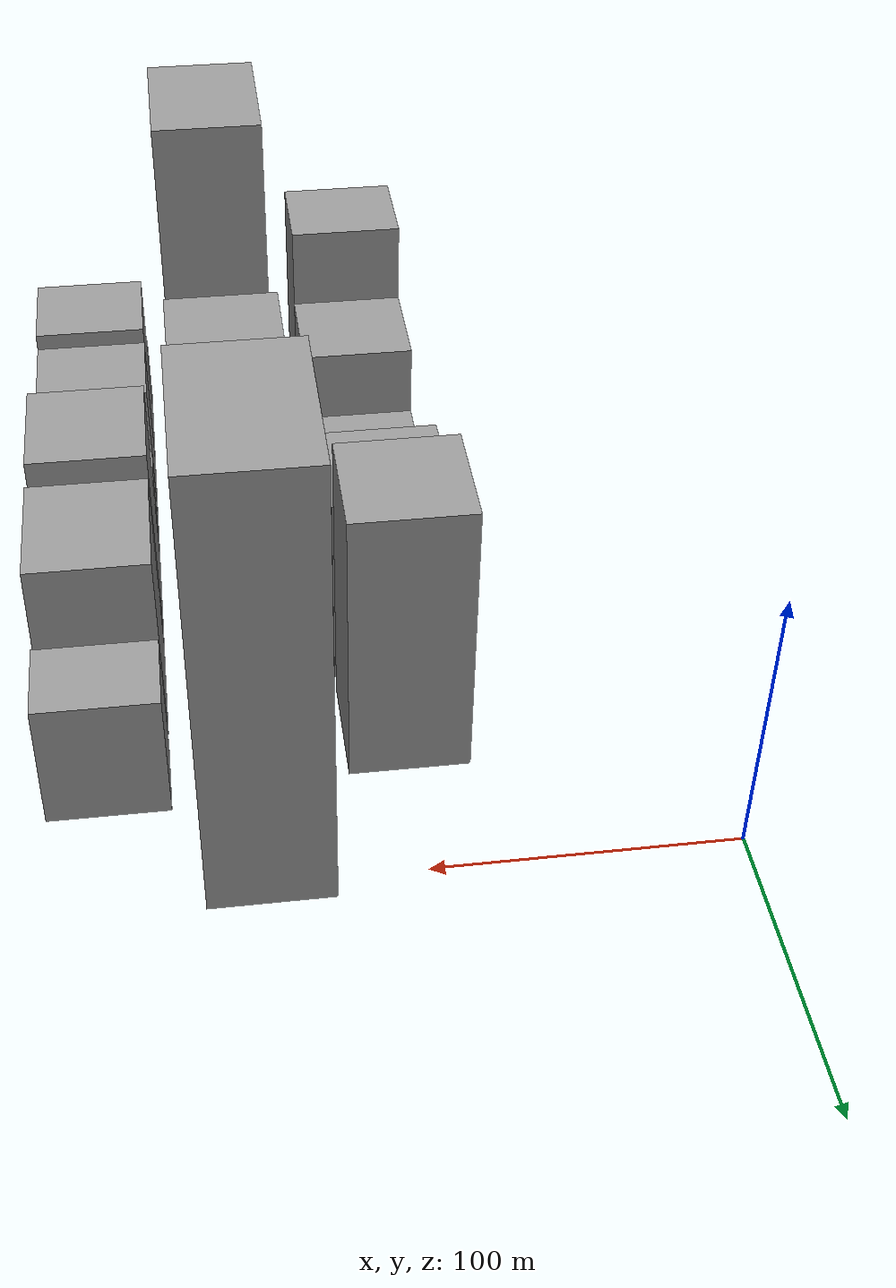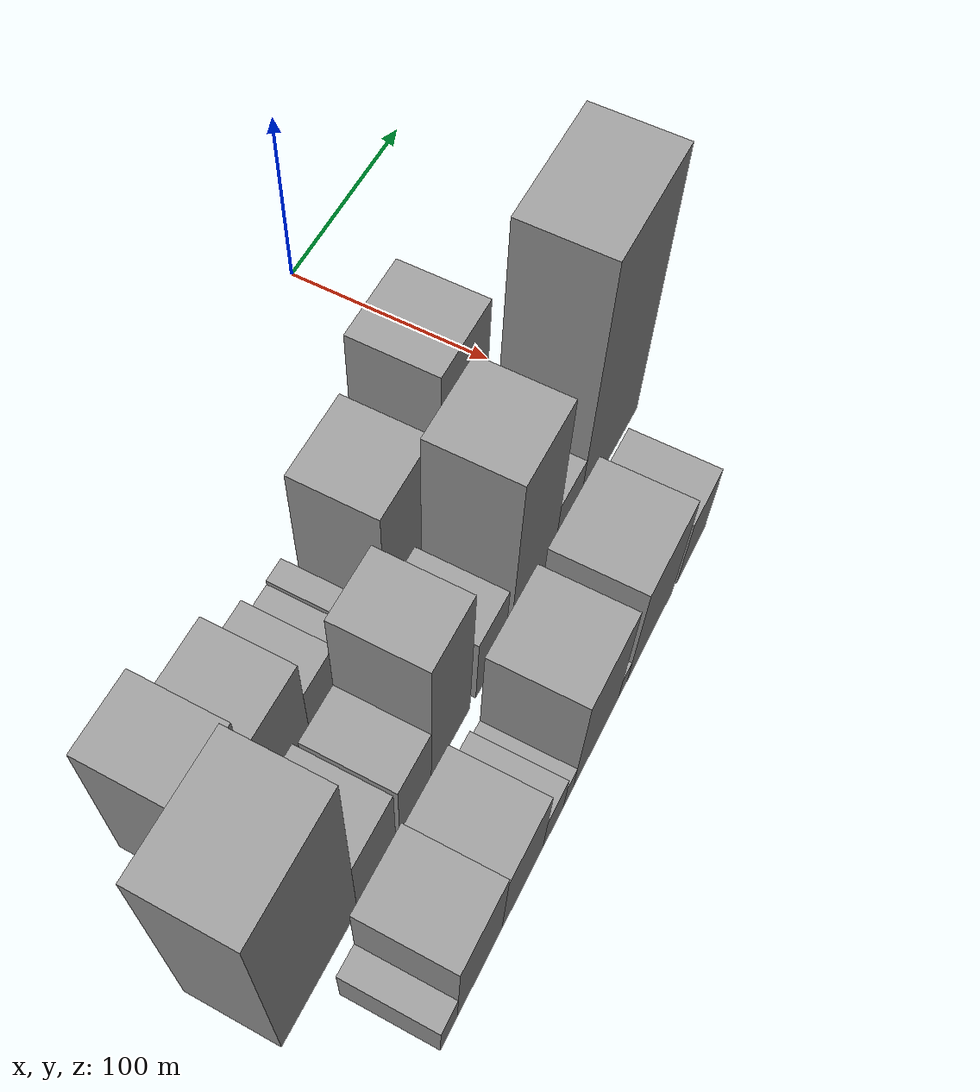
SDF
<sdf version="1.6">
 <world name="default">
  <model name="building_11">
   <static>1</static>
   <pose>100.0000 -242.7099 0 0.000000 0.000000 0.000000</pose>
   <link name="link">
    <pose>0 0 48.00 0 0 0</pose>
    <collision name="collision"><geometry><box><size>40.0000 33.5194 96.0000</size></box></geometry></collision>
    <visual name="visual">
     <cast_shadows>0</cast_shadows>
     <geometry><box><size>40.0000 33.5194 96.0000</size></box></geometry>
     <material>
      <script>
       <uri>model://grey_wall/materials/scripts</uri>
       <uri>model://grey_wall/materials/textures</uri>
       <name>vrc/grey_wall</name>
      </script>
     </material>
    </visual>
   </link>
  </model>
  <model name="building_12">
   <static>1</static>
   <pose>100.0000 -207.3057 0 0.000000 0.000000 0.000000</pose>
   <link name="link">
    <pose>0 0 33.00 0 0 0</pose>
    <collision name="collision"><geometry><box><size>40.0000 37.2890 66.0000</size></box></geometry></collision>
    <visual name="visual">
     <cast_shadows>0</cast_shadows>
     <geometry><box><size>40.0000 37.2890 66.0000</size></box></geometry>
     <material>
      <script>
       <uri>model://grey_wall/materials/scripts</uri>
       <uri>model://grey_wall/materials/textures</uri>
       <name>vrc/grey_wall</name>
      </script>
     </material>
    </visual>
   </link>
  </model>
  <model name="building_13">
   <static>1</static>
   <pose>100.0000 -177.5530 0 0.000000 0.000000 0.000000</pose>
   <link name="link">
    <pose>0 0 19.50 0 0 0</pose>
    <collision name="collision"><geometry><box><size>40.0000 22.2164 39.0000</size></box></geometry></collision>
    <visual name="visual">
     <cast_shadows>0</cast_shadows>
     <geometry><box><size>40.0000 22.2164 39.0000</size></box></geometry>
     <material>
      <script>
       <uri>model://grey_wall/materials/scripts</uri>
       <uri>model://grey_wall/materials/textures</uri>
       <name>vrc/grey_wall</name>
      </script>
     </material>
    </visual>
   </link>
  </model>
  <model name="building_14">
   <static>1</static>
   <pose>100.0000 -155.9474 0 0.000000 0.000000 0.000000</pose>
   <link name="link">
    <pose>0 0 12.00 0 0 0</pose>
    <collision name="collision"><geometry><box><size>40.0000 10.9948 24.0000</size></box></geometry></collision>
    <visual name="visual">
     <cast_shadows>0</cast_shadows>
     <geometry><box><size>40.0000 10.9948 24.0000</size></box></geometry>
     <material>
      <script>
       <uri>model://grey_wall/materials/scripts</uri>
       <uri>model://grey_wall/materials/textures</uri>
       <name>vrc/grey_wall</name>
      </script>
     </material>
    </visual>
   </link>
  </model>
  <model name="building_15">
   <static>1</static>
   <pose>100.0000 -144.8845 0 0.000000 0.000000 0.000000</pose>
   <link name="link">
    <pose>0 0 13.50 0 0 0</pose>
    <collision name="collision"><geometry><box><size>40.0000 11.1311 27.0000</size></box></geometry></collision>
    <visual name="visual">
     <cast_shadows>0</cast_shadows>
     <geometry><box><size>40.0000 11.1311 27.0000</size></box></geometry>
     <material>
      <script>
       <uri>model://grey_wall/materials/scripts</uri>
       <uri>model://grey_wall/materials/textures</uri>
       <name>vrc/grey_wall</name>
      </script>
     </material>
    </visual>
   </link>
  </model>
  <model name="building_16">
   <static>1</static>
   <pose>100.0000 -108.9709 0 0.000000 0.000000 0.000000</pose>
   <link name="link">
    <pose>0 0 37.50 0 0 0</pose>
    <collision name="collision"><geometry><box><size>40.0000 40.6960 75.0000</size></box></geometry></collision>
    <visual name="visual">
     <cast_shadows>0</cast_shadows>
     <geometry><box><size>40.0000 40.6960 75.0000</size></box></geometry>
     <material>
      <script>
       <uri>model://grey_wall/materials/scripts</uri>
       <uri>model://grey_wall/materials/textures</uri>
       <name>vrc/grey_wall</name>
      </script>
     </material>
    </visual>
   </link>
  </model>
  <model name="building_17">
   <static>1</static>
   <pose>100.0000 -62.7617 0 0.000000 0.000000 0.000000</pose>
   <link name="link">
    <pose>0 0 52.50 0 0 0</pose>
    <collision name="collision"><geometry><box><size>40.0000 39.7224 105.0000</size></box></geometry></collision>
    <visual name="visual">
     <cast_shadows>0</cast_shadows>
     <geometry><box><size>40.0000 39.7224 105.0000</size></box></geometry>
     <material>
      <script>
       <uri>model://grey_wall/materials/scripts</uri>
       <uri>model://grey_wall/materials/textures</uri>
       <name>vrc/grey_wall</name>
      </script>
     </material>
    </visual>
   </link>
  </model>
  <model name="building_40">
   <static>1</static>
   <pose>149.0000 -265.3873 0 0.000000 0.000000 0.000000</pose>
   <link name="link">
    <pose>0 0 67.50 0 0 0</pose>
    <collision name="collision"><geometry><box><size>40.0000 53.4052 135.0000</size></box></geometry></collision>
    <visual name="visual">
     <cast_shadows>0</cast_shadows>
     <geometry><box><size>40.0000 53.4052 135.0000</size></box></geometry>
     <material>
      <script>
       <uri>model://grey_wall/materials/scripts</uri>
       <uri>model://grey_wall/materials/textures</uri>
       <name>vrc/grey_wall</name>
      </script>
     </material>
    </visual>
   </link>
  </model>
  <model name="building_41">
   <static>1</static>
   <pose>149.0000 -224.1973 0 0.000000 0.000000 0.000000</pose>
   <link name="link">
    <pose>0 0 25.50 0 0 0</pose>
    <collision name="collision"><geometry><box><size>40.0000 28.9750 51.0000</size></box></geometry></collision>
    <visual name="visual">
     <cast_shadows>0</cast_shadows>
     <geometry><box><size>40.0000 28.9750 51.0000</size></box></geometry>
     <material>
      <script>
       <uri>model://grey_wall/materials/scripts</uri>
       <uri>model://grey_wall/materials/textures</uri>
       <name>vrc/grey_wall</name>
      </script>
     </material>
    </visual>
   </link>
  </model>
  <model name="building_42">
   <static>1</static>
   <pose>149.0000 -194.3258 0 0.000000 0.000000 0.000000</pose>
   <link name="link">
    <pose>0 0 22.50 0 0 0</pose>
    <collision name="collision"><geometry><box><size>40.0000 24.7681 45.0000</size></box></geometry></collision>
    <visual name="visual">
     <cast_shadows>0</cast_shadows>
     <geometry><box><size>40.0000 24.7681 45.0000</size></box></geometry>
     <material>
      <script>
       <uri>model://grey_wall/materials/scripts</uri>
       <uri>model://grey_wall/materials/textures</uri>
       <name>vrc/grey_wall</name>
      </script>
     </material>
    </visual>
   </link>
  </model>
  <model name="building_43">
   <static>1</static>
   <pose>149.0000 -166.0738 0 0.000000 0.000000 0.000000</pose>
   <link name="link">
    <pose>0 0 49.50 0 0 0</pose>
    <collision name="collision"><geometry><box><size>40.0000 31.7359 99.0000</size></box></geometry></collision>
    <visual name="visual">
     <cast_shadows>0</cast_shadows>
     <geometry><box><size>40.0000 31.7359 99.0000</size></box></geometry>
     <material>
      <script>
       <uri>model://grey_wall/materials/scripts</uri>
       <uri>model://grey_wall/materials/textures</uri>
       <name>vrc/grey_wall</name>
      </script>
     </material>
    </visual>
   </link>
  </model>
  <model name="building_44">
   <static>1</static>
   <pose>149.0000 -132.6454 0 0.000000 0.000000 0.000000</pose>
   <link name="link">
    <pose>0 0 24.00 0 0 0</pose>
    <collision name="collision"><geometry><box><size>40.0000 25.1210 48.0000</size></box></geometry></collision>
    <visual name="visual">
     <cast_shadows>0</cast_shadows>
     <geometry><box><size>40.0000 25.1210 48.0000</size></box></geometry>
     <material>
      <script>
       <uri>model://grey_wall/materials/scripts</uri>
       <uri>model://grey_wall/materials/textures</uri>
       <name>vrc/grey_wall</name>
      </script>
     </material>
    </visual>
   </link>
  </model>
  <model name="building_45">
   <static>1</static>
   <pose>149.0000 -95.3464 0 0.000000 0.000000 0.000000</pose>
   <link name="link">
    <pose>0 0 58.50 0 0 0</pose>
    <collision name="collision"><geometry><box><size>40.0000 39.4770 117.0000</size></box></geometry></collision>
    <visual name="visual">
     <cast_shadows>0</cast_shadows>
     <geometry><box><size>40.0000 39.4770 117.0000</size></box></geometry>
     <material>
      <script>
       <uri>model://grey_wall/materials/scripts</uri>
       <uri>model://grey_wall/materials/textures</uri>
       <name>vrc/grey_wall</name>
      </script>
     </material>
    </visual>
   </link>
  </model>
  <model name="building_46">
   <static>1</static>
   <pose>149.0000 -63.7286 0 0.000000 0.000000 0.000000</pose>
   <link name="link">
    <pose>0 0 21.00 0 0 0</pose>
    <collision name="collision"><geometry><box><size>40.0000 23.7586 42.0000</size></box></geometry></collision>
    <visual name="visual">
     <cast_shadows>0</cast_shadows>
     <geometry><box><size>40.0000 23.7586 42.0000</size></box></geometry>
     <material>
      <script>
       <uri>model://grey_wall/materials/scripts</uri>
       <uri>model://grey_wall/materials/textures</uri>
       <name>vrc/grey_wall</name>
      </script>
     </material>
    </visual>
   </link>
  </model>
  <model name="building_47">
   <static>1</static>
   <pose>149.0000 -22.4297 0 0.000000 0.000000 0.000000</pose>
   <link name="link">
    <pose>0 0 82.50 0 0 0</pose>
    <collision name="collision"><geometry><box><size>40.0000 58.8392 165.0000</size></box></geometry></collision>
    <visual name="visual">
     <cast_shadows>0</cast_shadows>
     <geometry><box><size>40.0000 58.8392 165.0000</size></box></geometry>
     <material>
      <script>
       <uri>model://grey_wall/materials/scripts</uri>
       <uri>model://grey_wall/materials/textures</uri>
       <name>vrc/grey_wall</name>
      </script>
     </material>
    </visual>
   </link>
  </model>
  <model name="building_70">
   <static>1</static>
   <pose>198.0000 -260.9088 0 0.000000 0.000000 0.000000</pose>
   <link name="link">
    <pose>0 0 13.50 0 0 0</pose>
    <collision name="collision"><geometry><box><size>40.0000 12.5088 27.0000</size></box></geometry></collision>
    <visual name="visual">
     <cast_shadows>0</cast_shadows>
     <geometry><box><size>40.0000 12.5088 27.0000</size></box></geometry>
     <material>
      <script>
       <uri>model://grey_wall/materials/scripts</uri>
       <uri>model://grey_wall/materials/textures</uri>
       <name>vrc/grey_wall</name>
      </script>
     </material>
    </visual>
   </link>
  </model>
  <model name="building_71">
   <static>1</static>
   <pose>198.0000 -237.2912 0 0.000000 0.000000 0.000000</pose>
   <link name="link">
    <pose>0 0 31.50 0 0 0</pose>
    <collision name="collision"><geometry><box><size>40.0000 34.7263 63.0000</size></box></geometry></collision>
    <visual name="visual">
     <cast_shadows>0</cast_shadows>
     <geometry><box><size>40.0000 34.7263 63.0000</size></box></geometry>
     <material>
      <script>
       <uri>model://grey_wall/materials/scripts</uri>
       <uri>model://grey_wall/materials/textures</uri>
       <name>vrc/grey_wall</name>
      </script>
     </material>
    </visual>
   </link>
  </model>
  <model name="building_72">
   <static>1</static>
   <pose>198.0000 -203.2256 0 0.000000 0.000000 0.000000</pose>
   <link name="link">
    <pose>0 0 28.50 0 0 0</pose>
    <collision name="collision"><geometry><box><size>40.0000 33.4049 57.0000</size></box></geometry></collision>
    <visual name="visual">
     <cast_shadows>0</cast_shadows>
     <geometry><box><size>40.0000 33.4049 57.0000</size></box></geometry>
     <material>
      <script>
       <uri>model://grey_wall/materials/scripts</uri>
       <uri>model://grey_wall/materials/textures</uri>
       <name>vrc/grey_wall</name>
      </script>
     </material>
    </visual>
   </link>
  </model>
  <model name="building_73">
   <static>1</static>
   <pose>198.0000 -177.7547 0 0.000000 0.000000 0.000000</pose>
   <link name="link">
    <pose>0 0 15.00 0 0 0</pose>
    <collision name="collision"><geometry><box><size>40.0000 17.5370 30.0000</size></box></geometry></collision>
    <visual name="visual">
     <cast_shadows>0</cast_shadows>
     <geometry><box><size>40.0000 17.5370 30.0000</size></box></geometry>
     <material>
      <script>
       <uri>model://grey_wall/materials/scripts</uri>
       <uri>model://grey_wall/materials/textures</uri>
       <name>vrc/grey_wall</name>
      </script>
     </material>
    </visual>
   </link>
  </model>
  <model name="building_74">
   <static>1</static>
   <pose>198.0000 -164.6777 0 0.000000 0.000000 0.000000</pose>
   <link name="link">
    <pose>0 0 10.50 0 0 0</pose>
    <collision name="collision"><geometry><box><size>40.0000 8.6170 21.0000</size></box></geometry></collision>
    <visual name="visual">
     <cast_shadows>0</cast_shadows>
     <geometry><box><size>40.0000 8.6170 21.0000</size></box></geometry>
     <material>
      <script>
       <uri>model://grey_wall/materials/scripts</uri>
       <uri>model://grey_wall/materials/textures</uri>
       <name>vrc/grey_wall</name>
      </script>
     </material>
    </visual>
   </link>
  </model>
  <model name="building_75">
   <static>1</static>
   <pose>198.0000 -140.0531 0 0.000000 0.000000 0.000000</pose>
   <link name="link">
    <pose>0 0 39.00 0 0 0</pose>
    <collision name="collision"><geometry><box><size>40.0000 40.6323 78.0000</size></box></geometry></collision>
    <visual name="visual">
     <cast_shadows>0</cast_shadows>
     <geometry><box><size>40.0000 40.6323 78.0000</size></box></geometry>
     <material>
      <script>
       <uri>model://grey_wall/materials/scripts</uri>
       <uri>model://grey_wall/materials/textures</uri>
       <name>vrc/grey_wall</name>
      </script>
     </material>
    </visual>
   </link>
  </model>
  <model name="building_76">
   <static>1</static>
   <pose>198.0000 -115.4726 0 0.000000 0.000000 0.000000</pose>
   <link name="link">
    <pose>0 0 9.00 0 0 0</pose>
    <collision name="collision"><geometry><box><size>40.0000 8.5287 18.0000</size></box></geometry></collision>
    <visual name="visual">
     <cast_shadows>0</cast_shadows>
     <geometry><box><size>40.0000 8.5287 18.0000</size></box></geometry>
     <material>
      <script>
       <uri>model://grey_wall/materials/scripts</uri>
       <uri>model://grey_wall/materials/textures</uri>
       <name>vrc/grey_wall</name>
      </script>
     </material>
    </visual>
   </link>
  </model>
  <model name="building_77">
   <static>1</static>
   <pose>198.0000 -89.4101 0 0.000000 0.000000 0.000000</pose>
   <link name="link">
    <pose>0 0 37.50 0 0 0</pose>
    <collision name="collision"><geometry><box><size>40.0000 43.5962 75.0000</size></box></geometry></collision>
    <visual name="visual">
     <cast_shadows>0</cast_shadows>
     <geometry><box><size>40.0000 43.5962 75.0000</size></box></geometry>
     <material>
      <script>
       <uri>model://grey_wall/materials/scripts</uri>
       <uri>model://grey_wall/materials/textures</uri>
       <name>vrc/grey_wall</name>
      </script>
     </material>
    </visual>
   </link>
  </model>
  <model name="building_78">
   <static>1</static>
   <pose>198.0000 -48.3830 0 0.000000 0.000000 0.000000</pose>
   <link name="link">
    <pose>0 0 24.00 0 0 0</pose>
    <collision name="collision"><geometry><box><size>40.0000 28.4581 48.0000</size></box></geometry></collision>
    <visual name="visual">
     <cast_shadows>0</cast_shadows>
     <geometry><box><size>40.0000 28.4581 48.0000</size></box></geometry>
     <material>
      <script>
       <uri>model://grey_wall/materials/scripts</uri>
       <uri>model://grey_wall/materials/textures</uri>
       <name>vrc/grey_wall</name>
      </script>
     </material>
    </visual>
   </link>
  </model>
 </world>
</sdf>
